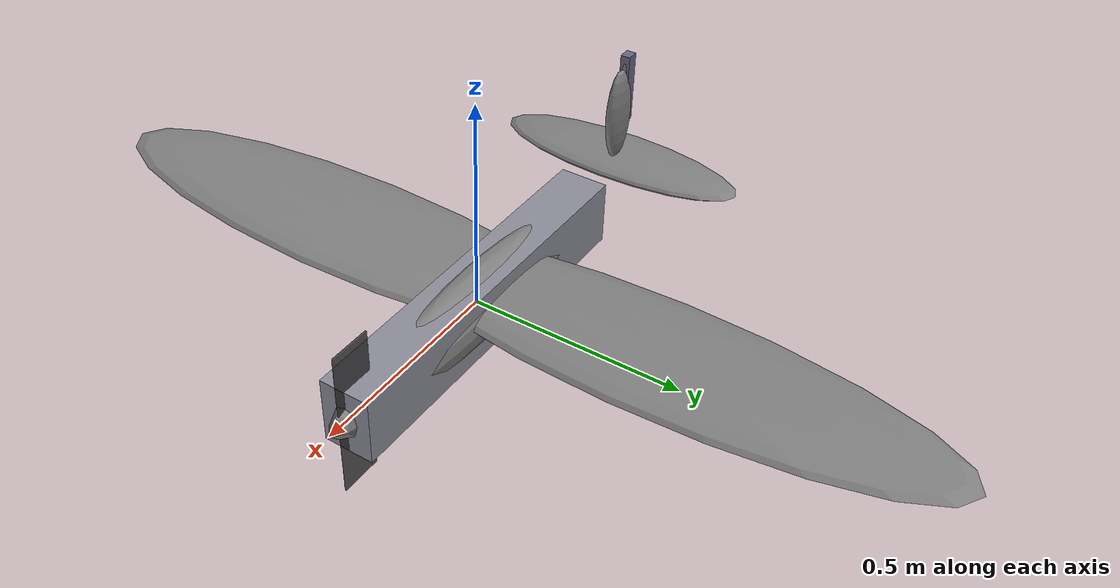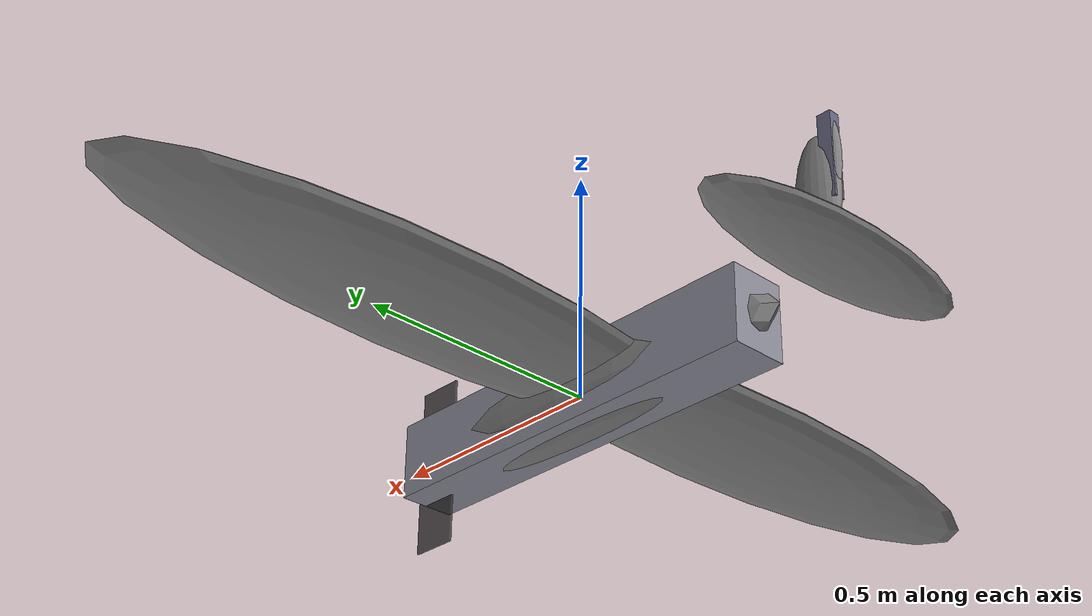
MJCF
<mujoco model="fixedwing_basic">

  <compiler angle="radian" meshdir="../../meshes"/>

  <option density="1.225" viscosity="1.81e-5"/>

  <worldbody>
    <body name="base_link" pos="0 0 0">
      <freejoint name="root"/>

      <site name="imu_site" pos="0 0 0" size="0.005"/>

      <inertial pos="0 0 0" mass="0.85"
                diaginertia="0.09 0.22 0.26"/>

      <!-- Fuselage: visual/collision box + ellipsoid fluid geom -->
      <geom name="fuselage_visual" type="box" size="0.45 0.06 0.08"
            rgba="0.55 0.55 0.6 1"/>
      <geom name="fuselage_fluid" type="ellipsoid" size="0.50 0.07 0.09"
            fluidshape="ellipsoid" fluidcoef="0.5 0.10 0.6 0.8 0.0"
            contype="0" conaffinity="0"/>

      <!-- Wing panels (fixed, part of base_link): ellipsoid fluid geoms -->
      <geom name="wing_left_fluid" type="ellipsoid" pos="-0.05 0.4 0.02"
            size="0.18 0.70 0.030"
            fluidshape="ellipsoid" fluidcoef="0.8 0.3 0.3 3.0 0.0"
            contype="0" conaffinity="0"/>
      <geom name="wing_right_fluid" type="ellipsoid" pos="-0.05 -0.4 0.02"
            size="0.18 0.70 0.030"
            fluidshape="ellipsoid" fluidcoef="0.8 0.3 0.3 3.0 0.0"
            contype="0" conaffinity="0"/>

      <!-- Horizontal stabilizer + fin fluid geoms -->
      <geom name="stab_fluid" type="ellipsoid" pos="-0.62 0 0.05"
            size="0.10 0.32 0.022"
            fluidshape="ellipsoid" fluidcoef="0.4 0.06 0.3 1.5 0.0"
            contype="0" conaffinity="0"/>
      <geom name="fin_fluid" type="ellipsoid" pos="-0.6 0 0.18"
            size="0.05 0.02 0.12"
            fluidshape="ellipsoid" fluidcoef="0.4 0.06 0.3 1.5 0.0"
            contype="0" conaffinity="0"/>

      <!-- Propeller: body + hinge; thrust via general actuator at site -->
      <body name="prop" pos="0.42 0 0.0">
        <joint name="prop_joint" type="hinge" axis="1 0 0"
               damping="0.0001" frictionloss="0.001"/>
        <inertial pos="0 0 0" mass="0.05"
                  diaginertia="0.0002 0.0002 0.0001"/>
        <site name="prop_site" pos="0 0 0" size="0.01"/>
        <geom name="prop_visual" type="box" size="0.05 0.002 0.18"
              rgba="0.2 0.2 0.2 0.8" contype="0" conaffinity="0"/>
      </body>

      <!-- Left aileron: hinge about -X so +ctrl = TE down (more lift) -->
      <body name="aileron_left_body" pos="-0.05 0.38 0.02">
        <joint name="aileron_left_joint" type="hinge" axis="-1 0 0"
               limited="true" range="-0.5 0.5"/>
        <inertial pos="0 0 0" mass="0.02"
                  diaginertia="0.0001 0.0001 0.0001"/>
        <geom name="aileron_left_geom" type="box" pos="-0.05 0.12 0"
              size="0.02 0.15 0.012" rgba="0.4 0.4 0.5 1"/>
        <geom name="aileron_left_fluid" type="ellipsoid" pos="-0.05 0.12 0"
              size="0.03 0.15 0.015"
              fluidshape="ellipsoid" fluidcoef="0.8 0.1 0.4 1.6 0.0"
              contype="0" conaffinity="0"/>
      </body>

      <!-- Right aileron: hinge about +X, geom on -Y side, +ctrl = TE down -->
      <body name="aileron_right_body" pos="-0.05 -0.38 0.02">
        <joint name="aileron_right_joint" type="hinge" axis="1 0 0"
               limited="true" range="-0.5 0.5"/>
        <inertial pos="0 0 0" mass="0.02"
                  diaginertia="0.0001 0.0001 0.0001"/>
        <geom name="aileron_right_geom" type="box" pos="-0.05 -0.12 0"
              size="0.02 0.15 0.012" rgba="0.4 0.4 0.5 1"/>
        <geom name="aileron_right_fluid" type="ellipsoid" pos="-0.05 -0.12 0"
              size="0.03 0.15 0.015"
              fluidshape="ellipsoid" fluidcoef="0.8 0.1 0.4 1.6 0.0"
              contype="0" conaffinity="0"/>
      </body>

      <!-- Elevator: hinge about +Y, +ctrl = TE up = nose up -->
      <body name="elevator_body" pos="-0.6 0 0.05">
        <joint name="elevator_joint" type="hinge" axis="0 -1 0"
               limited="true" range="-0.5 0.5"/>
        <inertial pos="0 0 0" mass="0.02"
                  diaginertia="0.0001 0.0001 0.0001"/>
        <geom name="elevator_geom" type="box" pos="-0.05 0 0"
              size="0.02 0.2 0.012" rgba="0.4 0.4 0.5 1"/>
        <geom name="elevator_fluid" type="ellipsoid" pos="-0.05 0 0"
              size="0.03 0.2 0.015"
              fluidshape="ellipsoid" fluidcoef="0.8 0.1 0.4 1.6 0.0"
              contype="0" conaffinity="0"/>
      </body>

      <!-- Rudder: hinge about +Z (sign validated in flight) -->
      <body name="rudder_body" pos="-0.6 0 0.18">
        <joint name="rudder_joint" type="hinge" axis="0 0 1"
               limited="true" range="-0.5 0.5"/>
        <inertial pos="0 0 0" mass="0.015"
                  diaginertia="0.0001 0.0001 0.0001"/>
        <geom name="rudder_geom" type="box" pos="-0.03 0 0.06"
              size="0.015 0.012 0.09" rgba="0.4 0.4 0.5 1"/>
        <geom name="rudder_fluid" type="ellipsoid" pos="-0.03 0 0.06"
              size="0.025 0.012 0.09"
              fluidshape="ellipsoid" fluidcoef="0.8 0.1 0.4 1.6 0.0"
              contype="0" conaffinity="0"/>
      </body>
    </body>
  </worldbody>

  <actuator>
    <general name="throttle" site="prop_site"
             gear="52 0 0" ctrlrange="0 1" ctrllimited="true"/>
    <general name="aileron_left" joint="aileron_left_joint" gear="1.0"
             ctrlrange="-0.5 0.5" ctrllimited="true"/>
    <general name="aileron_right" joint="aileron_right_joint" gear="1.0"
             ctrlrange="-0.5 0.5" ctrllimited="true"/>
    <general name="elevator" joint="elevator_joint" gear="0.5"
             ctrlrange="-0.5 0.5" ctrllimited="true"/>
    <general name="rudder" joint="rudder_joint" gear="1.0"
             ctrlrange="-0.5 0.5" ctrllimited="true"/>
  </actuator>

  <sensor>
    <accelerometer name="imu_accel" site="imu_site"/>
    <gyro          name="imu_gyro"  site="imu_site"/>
    <framequat     name="orientation" objtype="site" objname="imu_site"/>
    <framepos      name="position"   objtype="site" objname="imu_site"/>
    <framexaxis    name="heading"    objtype="site" objname="imu_site"/>
    <velocimeter   name="linvel"     site="imu_site"/>
    <frameyaxis    name="mag_y"      objtype="site" objname="imu_site"/>
    <framezaxis    name="mag_z"      objtype="site" objname="imu_site"/>
  </sensor>

</mujoco>
